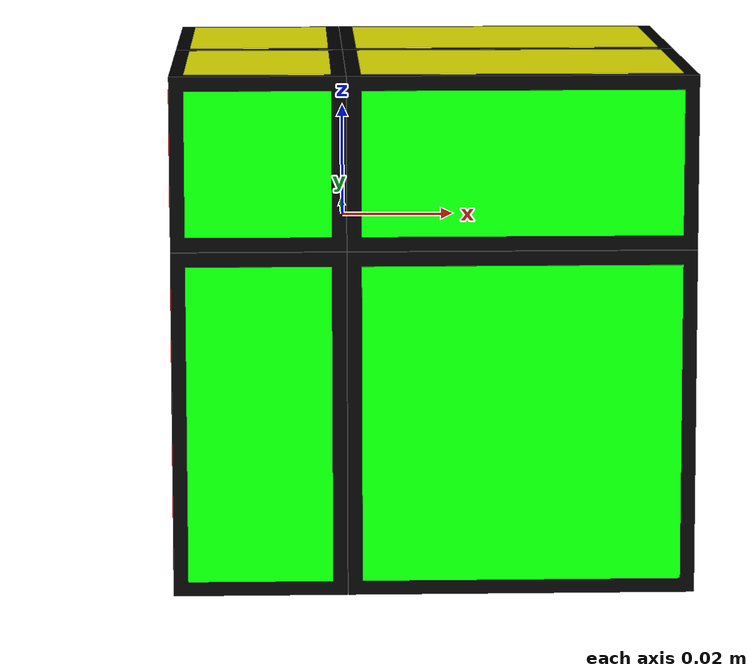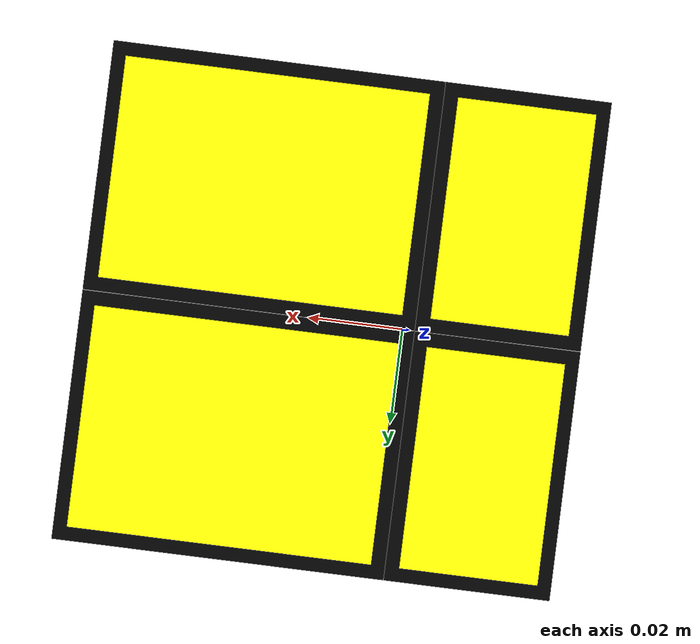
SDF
<?xml version="1.0" ?>
<sdf version="1.7">
	<model name="mirror_cube_2x2">
		<link name="center"/>
		<link name="cubie_0_0_0">
			<pose>-0.01505 -0.02255 -0.03005 0.0 0.0 0.0</pose>
			<inertial>
				<mass>0.03158999999999999</mass>
				<inertia>
					<ixx>1.4807812499999997e-05</ixx>
					<ixy>0.0</ixy>
					<ixz>0.0</ixz>
					<iyy>1.1846249999999997e-05</iyy>
					<iyz>0.0</iyz>
					<izz>7.700062499999997e-06</izz>
				</inertia>
			</inertial>
			<collision name="collision">
				<geometry>
					<box>
						<size>0.03 0.045 0.06</size>
					</box>
				</geometry>
				<surface>
					<friction>
						<ode>
							<mu>0.6</mu>
							<mu2>0.6</mu2>
						</ode>
					</friction>
				</surface>
			</collision>
			<visual name="black">
				<geometry>
					<box>
						<size>0.03 0.045 0.06</size>
					</box>
				</geometry>
				<material>
					<diffuse>0 0 0 1</diffuse>
				</material>
			</visual>
			<visual name="red">
				<pose>-0.015 0.0 0.0 0.0 0.0 0.0</pose>
				<geometry>
					<box>
						<size>0.00025 0.04 0.055</size>
					</box>
				</geometry>
				<material>
					<diffuse>1 0 0 1</diffuse>
				</material>
			</visual>
			<visual name="green">
				<pose>0.0 -0.0225 0.0 0.0 0.0 0.0</pose>
				<geometry>
					<box>
						<size>0.025 0.0004 0.055</size>
					</box>
				</geometry>
				<material>
					<diffuse>0 1 0 1</diffuse>
				</material>
			</visual>
			<visual name="white">
				<pose>0.0 0.0 -0.03 0.0 0.0 0.0</pose>
				<geometry>
					<box>
						<size>0.025 0.04 0.00055</size>
					</box>
				</geometry>
				<material>
					<diffuse>1 1 1 1</diffuse>
				</material>
			</visual>
		</link>
		<joint name="ball_0_0_0" type="ball">
			<pose>0.01505 0.02255 0.03005 -0.0 -0.0 -0.0</pose>
			<parent>center</parent>
			<child>cubie_0_0_0</child>
			<axis>
				<dynamics>
					<damping>0.1</damping>
				</dynamics>
				<limit>
					<effort>0</effort>
				</limit>
			</axis>
		</joint>
		<link name="cubie_0_0_1">
			<pose>-0.01505 -0.02255 0.01505 0.0 0.0 0.0</pose>
			<inertial>
				<mass>0.015794999999999997</mass>
				<inertia>
					<ixx>3.850031249999998e-06</ixx>
					<ixy>0.0</ixy>
					<ixz>0.0</ixz>
					<iyy>2.3692499999999994e-06</iyy>
					<iyz>0.0</iyz>
					<izz>3.850031249999998e-06</izz>
				</inertia>
			</inertial>
			<collision name="collision">
				<geometry>
					<box>
						<size>0.03 0.045 0.03</size>
					</box>
				</geometry>
				<surface>
					<friction>
						<ode>
							<mu>0.6</mu>
							<mu2>0.6</mu2>
						</ode>
					</friction>
				</surface>
			</collision>
			<visual name="black">
				<geometry>
					<box>
						<size>0.03 0.045 0.03</size>
					</box>
				</geometry>
				<material>
					<diffuse>0 0 0 1</diffuse>
				</material>
			</visual>
			<visual name="red">
				<pose>-0.015 0.0 0.0 0.0 0.0 0.0</pose>
				<geometry>
					<box>
						<size>0.00025 0.04 0.025</size>
					</box>
				</geometry>
				<material>
					<diffuse>1 0 0 1</diffuse>
				</material>
			</visual>
			<visual name="green">
				<pose>0.0 -0.0225 0.0 0.0 0.0 0.0</pose>
				<geometry>
					<box>
						<size>0.025 0.0004 0.025</size>
					</box>
				</geometry>
				<material>
					<diffuse>0 1 0 1</diffuse>
				</material>
			</visual>
			<visual name="yellow">
				<pose>0.0 0.0 0.015 0.0 0.0 0.0</pose>
				<geometry>
					<box>
						<size>0.025 0.04 0.00025</size>
					</box>
				</geometry>
				<material>
					<diffuse>1 1 0 1</diffuse>
				</material>
			</visual>
		</link>
		<joint name="ball_0_0_1" type="ball">
			<pose>0.01505 0.02255 -0.01505 -0.0 -0.0 -0.0</pose>
			<parent>center</parent>
			<child>cubie_0_0_1</child>
			<axis>
				<dynamics>
					<damping>0.1</damping>
				</dynamics>
				<limit>
					<effort>0</effort>
				</limit>
			</axis>
		</joint>
		<link name="cubie_0_1_0">
			<pose>-0.01505 0.02255 -0.03005 0.0 0.0 0.0</pose>
			<inertial>
				<mass>0.03158999999999999</mass>
				<inertia>
					<ixx>1.4807812499999997e-05</ixx>
					<ixy>0.0</ixy>
					<ixz>0.0</ixz>
					<iyy>1.1846249999999997e-05</iyy>
					<iyz>0.0</iyz>
					<izz>7.700062499999997e-06</izz>
				</inertia>
			</inertial>
			<collision name="collision">
				<geometry>
					<box>
						<size>0.03 0.045 0.06</size>
					</box>
				</geometry>
				<surface>
					<friction>
						<ode>
							<mu>0.6</mu>
							<mu2>0.6</mu2>
						</ode>
					</friction>
				</surface>
			</collision>
			<visual name="black">
				<geometry>
					<box>
						<size>0.03 0.045 0.06</size>
					</box>
				</geometry>
				<material>
					<diffuse>0 0 0 1</diffuse>
				</material>
			</visual>
			<visual name="red">
				<pose>-0.015 0.0 0.0 0.0 0.0 0.0</pose>
				<geometry>
					<box>
						<size>0.00025 0.04 0.055</size>
					</box>
				</geometry>
				<material>
					<diffuse>1 0 0 1</diffuse>
				</material>
			</visual>
			<visual name="blue">
				<pose>0.0 0.0225 0.0 0.0 0.0 0.0</pose>
				<geometry>
					<box>
						<size>0.025 0.0004 0.055</size>
					</box>
				</geometry>
				<material>
					<diffuse>0 0 1 1</diffuse>
				</material>
			</visual>
			<visual name="white">
				<pose>0.0 0.0 -0.03 0.0 0.0 0.0</pose>
				<geometry>
					<box>
						<size>0.025 0.04 0.00055</size>
					</box>
				</geometry>
				<material>
					<diffuse>1 1 1 1</diffuse>
				</material>
			</visual>
		</link>
		<joint name="ball_0_1_0" type="ball">
			<pose>0.01505 -0.02255 0.03005 -0.0 -0.0 -0.0</pose>
			<parent>center</parent>
			<child>cubie_0_1_0</child>
			<axis>
				<dynamics>
					<damping>0.1</damping>
				</dynamics>
				<limit>
					<effort>0</effort>
				</limit>
			</axis>
		</joint>
		<link name="cubie_0_1_1">
			<pose>-0.01505 0.02255 0.01505 0.0 0.0 0.0</pose>
			<inertial>
				<mass>0.015794999999999997</mass>
				<inertia>
					<ixx>3.850031249999998e-06</ixx>
					<ixy>0.0</ixy>
					<ixz>0.0</ixz>
					<iyy>2.3692499999999994e-06</iyy>
					<iyz>0.0</iyz>
					<izz>3.850031249999998e-06</izz>
				</inertia>
			</inertial>
			<collision name="collision">
				<geometry>
					<box>
						<size>0.03 0.045 0.03</size>
					</box>
				</geometry>
				<surface>
					<friction>
						<ode>
							<mu>0.6</mu>
							<mu2>0.6</mu2>
						</ode>
					</friction>
				</surface>
			</collision>
			<visual name="black">
				<geometry>
					<box>
						<size>0.03 0.045 0.03</size>
					</box>
				</geometry>
				<material>
					<diffuse>0 0 0 1</diffuse>
				</material>
			</visual>
			<visual name="red">
				<pose>-0.015 0.0 0.0 0.0 0.0 0.0</pose>
				<geometry>
					<box>
						<size>0.00025 0.04 0.025</size>
					</box>
				</geometry>
				<material>
					<diffuse>1 0 0 1</diffuse>
				</material>
			</visual>
			<visual name="blue">
				<pose>0.0 0.0225 0.0 0.0 0.0 0.0</pose>
				<geometry>
					<box>
						<size>0.025 0.0004 0.025</size>
					</box>
				</geometry>
				<material>
					<diffuse>0 0 1 1</diffuse>
				</material>
			</visual>
			<visual name="yellow">
				<pose>0.0 0.0 0.015 0.0 0.0 0.0</pose>
				<geometry>
					<box>
						<size>0.025 0.04 0.00025</size>
					</box>
				</geometry>
				<material>
					<diffuse>1 1 0 1</diffuse>
				</material>
			</visual>
		</link>
		<joint name="ball_0_1_1" type="ball">
			<pose>0.01505 -0.02255 -0.01505 -0.0 -0.0 -0.0</pose>
			<parent>center</parent>
			<child>cubie_0_1_1</child>
			<axis>
				<dynamics>
					<damping>0.1</damping>
				</dynamics>
				<limit>
					<effort>0</effort>
				</limit>
			</axis>
		</joint>
		<link name="cubie_1_0_0">
			<pose>0.03005 -0.02255 -0.03005 0.0 0.0 0.0</pose>
			<inertial>
				<mass>0.06317999999999999</mass>
				<inertia>
					<ixx>2.9615624999999993e-05</ixx>
					<ixy>0.0</ixy>
					<ixz>0.0</ixz>
					<iyy>3.790799999999999e-05</iyy>
					<iyz>0.0</iyz>
					<izz>2.9615624999999993e-05</izz>
				</inertia>
			</inertial>
			<collision name="collision">
				<geometry>
					<box>
						<size>0.06 0.045 0.06</size>
					</box>
				</geometry>
				<surface>
					<friction>
						<ode>
							<mu>0.6</mu>
							<mu2>0.6</mu2>
						</ode>
					</friction>
				</surface>
			</collision>
			<visual name="black">
				<geometry>
					<box>
						<size>0.06 0.045 0.06</size>
					</box>
				</geometry>
				<material>
					<diffuse>0 0 0 1</diffuse>
				</material>
			</visual>
			<visual name="orange">
				<pose>0.03 0.0 0.0 0.0 0.0 0.0</pose>
				<geometry>
					<box>
						<size>0.00055 0.04 0.055</size>
					</box>
				</geometry>
				<material>
					<diffuse>1.0 0.5 0.0 1.0</diffuse>
				</material>
			</visual>
			<visual name="green">
				<pose>0.0 -0.0225 0.0 0.0 0.0 0.0</pose>
				<geometry>
					<box>
						<size>0.055 0.0004 0.055</size>
					</box>
				</geometry>
				<material>
					<diffuse>0 1 0 1</diffuse>
				</material>
			</visual>
			<visual name="white">
				<pose>0.0 0.0 -0.03 0.0 0.0 0.0</pose>
				<geometry>
					<box>
						<size>0.055 0.04 0.00055</size>
					</box>
				</geometry>
				<material>
					<diffuse>1 1 1 1</diffuse>
				</material>
			</visual>
		</link>
		<joint name="ball_1_0_0" type="ball">
			<pose>-0.03005 0.02255 0.03005 -0.0 -0.0 -0.0</pose>
			<parent>center</parent>
			<child>cubie_1_0_0</child>
			<axis>
				<dynamics>
					<damping>0.1</damping>
				</dynamics>
				<limit>
					<effort>0</effort>
				</limit>
			</axis>
		</joint>
		<link name="cubie_1_0_1">
			<pose>0.03005 -0.02255 0.01505 0.0 0.0 0.0</pose>
			<inertial>
				<mass>0.03158999999999999</mass>
				<inertia>
					<ixx>7.700062499999997e-06</ixx>
					<ixy>0.0</ixy>
					<ixz>0.0</ixz>
					<iyy>1.1846249999999997e-05</iyy>
					<iyz>0.0</iyz>
					<izz>1.4807812499999997e-05</izz>
				</inertia>
			</inertial>
			<collision name="collision">
				<geometry>
					<box>
						<size>0.06 0.045 0.03</size>
					</box>
				</geometry>
				<surface>
					<friction>
						<ode>
							<mu>0.6</mu>
							<mu2>0.6</mu2>
						</ode>
					</friction>
				</surface>
			</collision>
			<visual name="black">
				<geometry>
					<box>
						<size>0.06 0.045 0.03</size>
					</box>
				</geometry>
				<material>
					<diffuse>0 0 0 1</diffuse>
				</material>
			</visual>
			<visual name="orange">
				<pose>0.03 0.0 0.0 0.0 0.0 0.0</pose>
				<geometry>
					<box>
						<size>0.00055 0.04 0.025</size>
					</box>
				</geometry>
				<material>
					<diffuse>1.0 0.5 0.0 1.0</diffuse>
				</material>
			</visual>
			<visual name="green">
				<pose>0.0 -0.0225 0.0 0.0 0.0 0.0</pose>
				<geometry>
					<box>
						<size>0.055 0.0004 0.025</size>
					</box>
				</geometry>
				<material>
					<diffuse>0 1 0 1</diffuse>
				</material>
			</visual>
			<visual name="yellow">
				<pose>0.0 0.0 0.015 0.0 0.0 0.0</pose>
				<geometry>
					<box>
						<size>0.055 0.04 0.00025</size>
					</box>
				</geometry>
				<material>
					<diffuse>1 1 0 1</diffuse>
				</material>
			</visual>
		</link>
		<joint name="ball_1_0_1" type="ball">
			<pose>-0.03005 0.02255 -0.01505 -0.0 -0.0 -0.0</pose>
			<parent>center</parent>
			<child>cubie_1_0_1</child>
			<axis>
				<dynamics>
					<damping>0.1</damping>
				</dynamics>
				<limit>
					<effort>0</effort>
				</limit>
			</axis>
		</joint>
		<link name="cubie_1_1_0">
			<pose>0.03005 0.02255 -0.03005 0.0 0.0 0.0</pose>
			<inertial>
				<mass>0.06317999999999999</mass>
				<inertia>
					<ixx>2.9615624999999993e-05</ixx>
					<ixy>0.0</ixy>
					<ixz>0.0</ixz>
					<iyy>3.790799999999999e-05</iyy>
					<iyz>0.0</iyz>
					<izz>2.9615624999999993e-05</izz>
				</inertia>
			</inertial>
			<collision name="collision">
				<geometry>
					<box>
						<size>0.06 0.045 0.06</size>
					</box>
				</geometry>
				<surface>
					<friction>
						<ode>
							<mu>0.6</mu>
							<mu2>0.6</mu2>
						</ode>
					</friction>
				</surface>
			</collision>
			<visual name="black">
				<geometry>
					<box>
						<size>0.06 0.045 0.06</size>
					</box>
				</geometry>
				<material>
					<diffuse>0 0 0 1</diffuse>
				</material>
			</visual>
			<visual name="orange">
				<pose>0.03 0.0 0.0 0.0 0.0 0.0</pose>
				<geometry>
					<box>
						<size>0.00055 0.04 0.055</size>
					</box>
				</geometry>
				<material>
					<diffuse>1.0 0.5 0.0 1.0</diffuse>
				</material>
			</visual>
			<visual name="blue">
				<pose>0.0 0.0225 0.0 0.0 0.0 0.0</pose>
				<geometry>
					<box>
						<size>0.055 0.0004 0.055</size>
					</box>
				</geometry>
				<material>
					<diffuse>0 0 1 1</diffuse>
				</material>
			</visual>
			<visual name="white">
				<pose>0.0 0.0 -0.03 0.0 0.0 0.0</pose>
				<geometry>
					<box>
						<size>0.055 0.04 0.00055</size>
					</box>
				</geometry>
				<material>
					<diffuse>1 1 1 1</diffuse>
				</material>
			</visual>
		</link>
		<joint name="ball_1_1_0" type="ball">
			<pose>-0.03005 -0.02255 0.03005 -0.0 -0.0 -0.0</pose>
			<parent>center</parent>
			<child>cubie_1_1_0</child>
			<axis>
				<dynamics>
					<damping>0.1</damping>
				</dynamics>
				<limit>
					<effort>0</effort>
				</limit>
			</axis>
		</joint>
		<link name="cubie_1_1_1">
			<pose>0.03005 0.02255 0.01505 0.0 0.0 0.0</pose>
			<inertial>
				<mass>0.03158999999999999</mass>
				<inertia>
					<ixx>7.700062499999997e-06</ixx>
					<ixy>0.0</ixy>
					<ixz>0.0</ixz>
					<iyy>1.1846249999999997e-05</iyy>
					<iyz>0.0</iyz>
					<izz>1.4807812499999997e-05</izz>
				</inertia>
			</inertial>
			<collision name="collision">
				<geometry>
					<box>
						<size>0.06 0.045 0.03</size>
					</box>
				</geometry>
				<surface>
					<friction>
						<ode>
							<mu>0.6</mu>
							<mu2>0.6</mu2>
						</ode>
					</friction>
				</surface>
			</collision>
			<visual name="black">
				<geometry>
					<box>
						<size>0.06 0.045 0.03</size>
					</box>
				</geometry>
				<material>
					<diffuse>0 0 0 1</diffuse>
				</material>
			</visual>
			<visual name="orange">
				<pose>0.03 0.0 0.0 0.0 0.0 0.0</pose>
				<geometry>
					<box>
						<size>0.00055 0.04 0.025</size>
					</box>
				</geometry>
				<material>
					<diffuse>1.0 0.5 0.0 1.0</diffuse>
				</material>
			</visual>
			<visual name="blue">
				<pose>0.0 0.0225 0.0 0.0 0.0 0.0</pose>
				<geometry>
					<box>
						<size>0.055 0.0004 0.025</size>
					</box>
				</geometry>
				<material>
					<diffuse>0 0 1 1</diffuse>
				</material>
			</visual>
			<visual name="yellow">
				<pose>0.0 0.0 0.015 0.0 0.0 0.0</pose>
				<geometry>
					<box>
						<size>0.055 0.04 0.00025</size>
					</box>
				</geometry>
				<material>
					<diffuse>1 1 0 1</diffuse>
				</material>
			</visual>
		</link>
		<joint name="ball_1_1_1" type="ball">
			<pose>-0.03005 -0.02255 -0.01505 -0.0 -0.0 -0.0</pose>
			<parent>center</parent>
			<child>cubie_1_1_1</child>
			<axis>
				<dynamics>
					<damping>0.1</damping>
				</dynamics>
				<limit>
					<effort>0</effort>
				</limit>
			</axis>
		</joint>
	</model>
</sdf>
